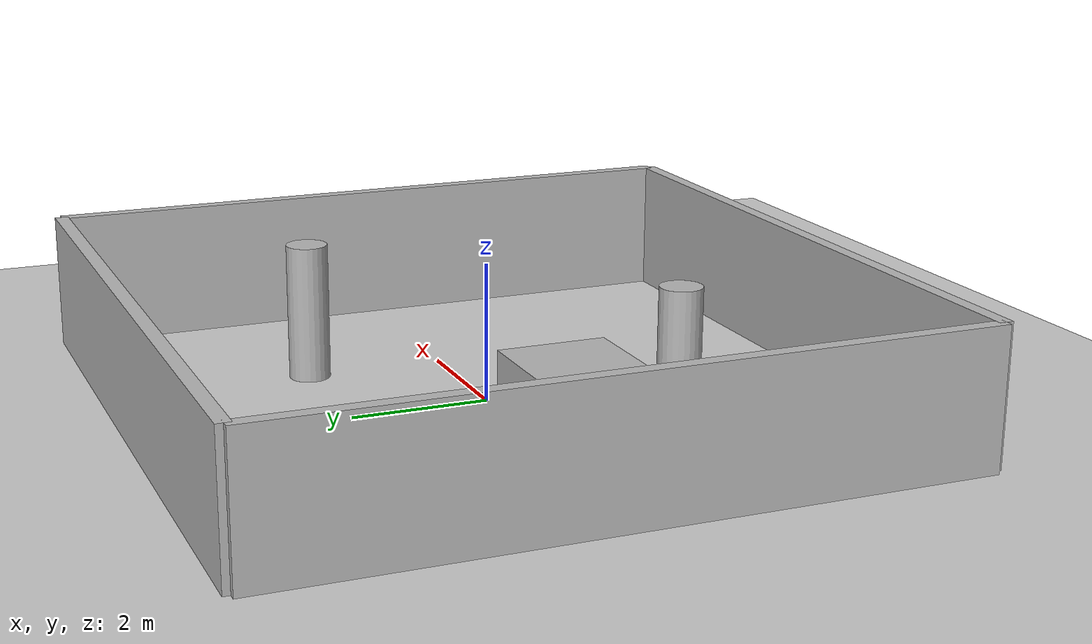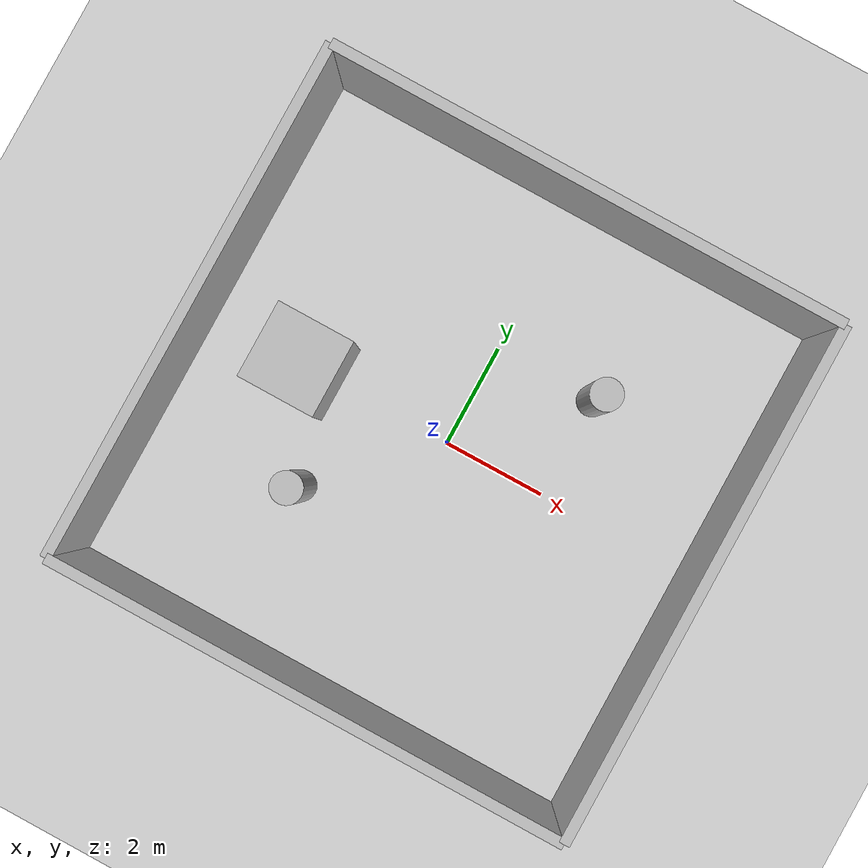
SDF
<?xml version="1.0" ?>
<sdf version="1.8">
  <world name="simple_room">

    <!-- Core systems -->
    <plugin filename="gz-sim-physics-system" name="gz::sim::systems::Physics"/>
    <plugin filename="gz-sim-user-commands-system" name="gz::sim::systems::UserCommands"/>
    <plugin filename="gz-sim-scene-broadcaster-system" name="gz::sim::systems::SceneBroadcaster"/>
    <plugin filename="gz-sim-sensors-system" name="gz::sim::systems::Sensors">
      <render_engine>ogre2</render_engine>
    </plugin>

    <plugin filename="gz-sim-imu-system" name="gz::sim::systems::Imu"/>
    <plugin filename="gz-sim-air-pressure-system" name="gz::sim::systems::AirPressure"/>
    <plugin filename="gz-sim-magnetometer-system" name="gz::sim::systems::Magnetometer"/>
    <plugin filename="gz-sim-navsat-system" name="gz::sim::systems::NavSat"/>

    <!-- Light + ground -->
    <model name="ground_plane">
      <static>true</static>
      <link name="link">
        <collision name="col">
          <geometry><plane><normal>0 0 1</normal><size>100 100</size></plane></geometry>
        </collision>
        <visual name="vis">
          <geometry><plane><normal>0 0 1</normal><size>100 100</size></plane></geometry>
        </visual>
      </link>
    </model>

    <light name="sun" type="directional">
      <cast_shadows>true</cast_shadows>
      <pose>0 0 10 0 0 0</pose>
      <diffuse>0.8 0.8 0.8 1</diffuse>
      <specular>0.2 0.2 0.2 1</specular>
      <direction>-0.5 0.1 -0.9</direction>
    </light>

    <!-- Physics (stable + not heavy) -->
    <physics name="1ms" type="ode">
      <max_step_size>0.004</max_step_size>
      <real_time_factor>1.0</real_time_factor>
    </physics>

    <!-- ===== OUTER WALLS (room) ===== -->
    <!-- Back wall -->
    <model name="wall_back">
      <static>true</static>
      <link name="link">
        <pose>0 -5 1 0 0 0</pose>
        <collision name="col">
          <geometry>
            <box><size>10 0.2 2</size></box>
          </geometry>
        </collision>
        <visual name="vis">
          <geometry>
            <box><size>10 0.2 2</size></box>
          </geometry>
        </visual>
      </link>
    </model>

    <!-- Front wall -->
    <model name="wall_front">
      <static>true</static>
      <link name="link">
        <pose>0 5 1 0 0 0</pose>
        <collision name="col">
          <geometry>
            <box><size>10 0.2 2</size></box>
          </geometry>
        </collision>
        <visual name="vis">
          <geometry>
            <box><size>10 0.2 2</size></box>
          </geometry>
        </visual>
      </link>
    </model>

    <!-- Left wall -->
    <model name="wall_left">
      <static>true</static>
      <link name="link">
        <pose>-5 0 1 0 0 0</pose>
        <collision name="col">
          <geometry>
            <box><size>0.2 10 2</size></box>
          </geometry>
        </collision>
        <visual name="vis">
          <geometry>
            <box><size>0.2 10 2</size></box>
          </geometry>
        </visual>
      </link>
    </model>

    <!-- Right wall -->
    <model name="wall_right">
      <static>true</static>
      <link name="link">
        <pose>5 0 1 0 0 0</pose>
        <collision name="col">
          <geometry>
            <box><size>0.2 10 2</size></box>
          </geometry>
        </collision>
        <visual name="vis">
          <geometry>
            <box><size>0.2 10 2</size></box>
          </geometry>
        </visual>
      </link>
    </model>

    <!-- ===== INTERNAL OBSTACLES ===== -->

    <!-- Center block -->
    <model name="center_block">
      <static>true</static>
      <link name="link">
        <pose>-3 0 0.75 0 0 0</pose>
        <collision name="col">
          <geometry>
            <box><size>1.5 1.5 1.5</size></box>
          </geometry>
        </collision>
        <visual name="vis">
          <geometry>
            <box><size>1.5 1.5 1.5</size></box>
          </geometry>
        </visual>
      </link>
    </model>

    <!-- Pillars -->
    <model name="pillar_1">
      <static>true</static>
      <link name="link">
        <pose>2 2 1 0 0 0</pose>
        <collision name="col">
          <geometry>
            <cylinder><radius>0.3</radius><length>2</length></cylinder>
          </geometry>
        </collision>
        <visual name="vis">
          <geometry>
            <cylinder><radius>0.3</radius><length>2</length></cylinder>
          </geometry>
        </visual>
      </link>
    </model>

    <model name="pillar_2">
      <static>true</static>
      <link name="link">
        <pose>-2 -2 1 0 0 0</pose>
        <collision name="col">
          <geometry>
            <cylinder><radius>0.3</radius><length>2</length></cylinder>
          </geometry>
        </collision>
        <visual name="vis">
          <geometry>
            <cylinder><radius>0.3</radius><length>2</length></cylinder>
          </geometry>
        </visual>
      </link>
    </model>

    <!-- magnetic field  -->
    <magnetic_field>5.5645e-6 22.8758e-6 -42.3884e-6</magnetic_field>
    <atmosphere type='adiabatic'/>
    <spherical_coordinates>
      <surface_model>EARTH_WGS84</surface_model>
      <latitude_deg>47.397742</latitude_deg>
      <longitude_deg>8.545594</longitude_deg>
      <elevation>488.0</elevation>
      <heading_deg>0</heading_deg>
    </spherical_coordinates>

  </world>
</sdf>
